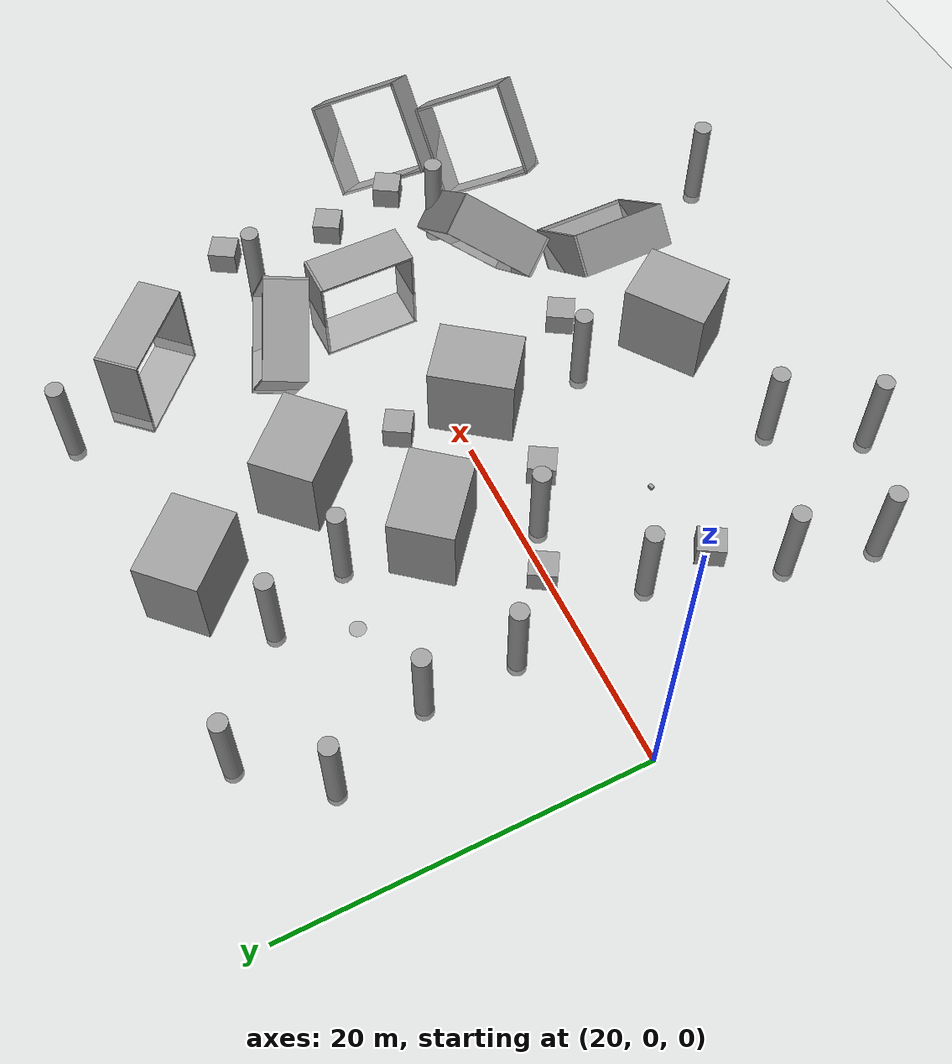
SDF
<sdf version="1.6">
 <world name="default">
  <model name="ground_plane">
   <static>1</static>
   <link name="link">
    <collision name="collision">
     <geometry><plane><normal>0 0 1</normal><size>400 400</size></plane></geometry>
     <surface><friction><ode><mu>100</mu><mu2>50</mu2></ode></friction></surface>
    </collision>
    <visual name="visual">
     <cast_shadows>0</cast_shadows>
     <geometry><plane><normal>0 0 1</normal><size>200 200</size></plane></geometry>
     <material>
      <script><uri>file://media/materials/scripts/gazebo.material</uri><name>Gazebo/Grey</name></script>
     </material>
    </visual>
    <gravity>0</gravity>
   </link>
  </model>
  <model name="unit_cylinder_0">
   <static>1</static>
   <pose>36.5123 8.86063 -7.43476 0 -0 0</pose>
   <link name="link">
    <inertial>
     <mass>1</mass>
     <inertia><ixx>0.145833</ixx><ixy>0</ixy><ixz>0</ixz><iyy>0.145833</iyy><iyz>0</iyz><izz>0.125</izz></inertia>
    </inertial>
    <collision name="collision">
     <geometry><cylinder><radius>0.5</radius><length>0.000754659</length></cylinder></geometry>
     <surface><contact><collide_without_contact>1</collide_without_contact></contact></surface>
    </collision>
    <visual name="visual">
     <geometry><cylinder><radius>0.5</radius><length>0.000754659</length></cylinder></geometry>
     <material>
      <script><name>Gazebo/Grey</name><uri>file://media/materials/scripts/gazebo.material</uri></script>
     </material>
    </visual>
    <gravity>0</gravity>
   </link>
  </model>
  <model name="unit_cylinder_0_clone_14_clone_14">
   <static>1</static>
   <pose>26.2784 -11.4682 2.40172 0 -0 0.001073</pose>
   <link name="link">
    <inertial>
     <mass>1</mass>
     <inertia><ixx>0.145833</ixx><ixy>0</ixy><ixz>0</ixz><iyy>0.145833</iyy><iyz>0</iyz><izz>0.125</izz></inertia>
    </inertial>
    <collision name="collision">
     <geometry><cylinder><radius>0.5</radius><length>6.03342</length></cylinder></geometry>
     <surface><contact><collide_without_contact>1</collide_without_contact></contact></surface>
    </collision>
    <visual name="visual">
     <geometry><cylinder><radius>0.5</radius><length>6.03342</length></cylinder></geometry>
     <material>
      <script><name>Gazebo/Grey</name><uri>file://media/materials/scripts/gazebo.material</uri></script>
     </material>
    </visual>
    <gravity>0</gravity>
   </link>
  </model>
  <model name="unit_cylinder_0_clone_14_clone_9_clone">
   <static>1</static>
   <pose>27.6139 3.55096 2.40172 0 -0 0.001073</pose>
   <link name="link">
    <inertial>
     <mass>1</mass>
     <inertia><ixx>0.145833</ixx><ixy>0</ixy><ixz>0</ixz><iyy>0.145833</iyy><iyz>0</iyz><izz>0.125</izz></inertia>
    </inertial>
    <collision name="collision">
     <geometry><cylinder><radius>0.5</radius><length>6.03342</length></cylinder></geometry>
     <surface><contact><collide_without_contact>1</collide_without_contact></contact></surface>
    </collision>
    <visual name="visual">
     <geometry><cylinder><radius>0.5</radius><length>6.03342</length></cylinder></geometry>
     <material>
      <script><name>Gazebo/Grey</name><uri>file://media/materials/scripts/gazebo.material</uri></script>
     </material>
    </visual>
    <gravity>0</gravity>
   </link>
  </model>
  <model name="unit_cylinder_0_clone_14_clone_9_clone_0">
   <static>1</static>
   <pose>28.4771 -4.34225 2.40172 0 -0 0.001073</pose>
   <link name="link">
    <inertial>
     <mass>1</mass>
     <inertia><ixx>0.145833</ixx><ixy>0</ixy><ixz>0</ixz><iyy>0.145833</iyy><iyz>0</iyz><izz>0.125</izz></inertia>
    </inertial>
    <collision name="collision">
     <geometry><cylinder><radius>0.5</radius><length>6.03342</length></cylinder></geometry>
     <surface><contact><collide_without_contact>1</collide_without_contact></contact></surface>
    </collision>
    <visual name="visual">
     <geometry><cylinder><radius>0.5</radius><length>6.03342</length></cylinder></geometry>
     <material>
      <script><name>Gazebo/Grey</name><uri>file://media/materials/scripts/gazebo.material</uri></script>
     </material>
    </visual>
    <gravity>0</gravity>
   </link>
  </model>
  <model name="unit_cylinder_0_clone_14_clone_14_clone">
   <static>1</static>
   <pose>27.4778 8.76956 2.40172 0 -0 0.001073</pose>
   <link name="link">
    <inertial>
     <mass>1</mass>
     <inertia><ixx>0.145833</ixx><ixy>0</ixy><ixz>0</ixz><iyy>0.145833</iyy><iyz>0</iyz><izz>0.125</izz></inertia>
    </inertial>
    <collision name="collision">
     <geometry><cylinder><radius>0.5</radius><length>6.03342</length></cylinder></geometry>
     <surface><contact><collide_without_contact>1</collide_without_contact></contact></surface>
    </collision>
    <visual name="visual">
     <geometry><cylinder><radius>0.5</radius><length>6.03342</length></cylinder></geometry>
     <material>
      <script><name>Gazebo/Grey</name><uri>file://media/materials/scripts/gazebo.material</uri></script>
     </material>
    </visual>
    <gravity>0</gravity>
   </link>
  </model>
  <model name="unit_box_0">
   <pose>33.6091 -7.66217 0.102875 0 -0 0.311003</pose>
   <link name="link">
    <inertial>
     <mass>1</mass>
     <inertia>
      <ixx>0.166667</ixx>
      <ixy>0</ixy>
      <ixz>0</ixz>
      <iyy>0.166667</iyy>
      <iyz>0</iyz>
      <izz>0.166667</izz>
     </inertia>
    </inertial>
    <collision name="collision">
     <geometry><box><size>0.280027 0.211756 0.205751</size></box></geometry>
    </collision>
    <visual name="visual">
     <geometry><box><size>0.280027 0.211756 0.205751</size></box></geometry>
     <material>
      <script><name>Gazebo/Grey</name><uri>file://media/materials/scripts/gazebo.material</uri></script>
     </material>
    </visual>
   </link>
  </model>
  <model name="unit_box_0_clone">
   <pose>35.8595 4.28489 2.36118 1.5708 -1e-06 0.886453</pose>
   <link name="link">
    <inertial>
     <mass>1</mass>
     <inertia>
      <ixx>0.166667</ixx>
      <ixy>0</ixy>
      <ixz>0</ixz>
      <iyy>0.166667</iyy>
      <iyz>0</iyz>
      <izz>0.166667</izz>
     </inertia>
    </inertial>
    <collision name="collision"><geometry><box><size>3.57109 4.72237 4.86028</size></box></geometry></collision>
    <visual name="visual">
     <geometry><box><size>3.57109 4.72237 4.86028</size></box></geometry>
     <material>
      <script><name>Gazebo/Grey</name><uri>file://media/materials/scripts/gazebo.material</uri></script>
     </material>
    </visual>
   </link>
  </model>
  <model name="unit_box_0_clone_0">
   <pose>42.4872 -1.52104 2.43013 1e-06 -0 -0.648959</pose>
   <link name="link">
    <inertial>
     <mass>1</mass>
     <inertia>
      <ixx>0.166667</ixx>
      <ixy>0</ixy>
      <ixz>0</ixz>
      <iyy>0.166667</iyy>
      <iyz>0</iyz>
      <izz>0.166667</izz>
     </inertia>
    </inertial>
    <collision name="collision"><geometry><box><size>3.57109 4.72237 4.86028</size></box></geometry></collision>
    <visual name="visual">
     <geometry><box><size>3.57109 4.72237 4.86028</size></box></geometry>
     <material>
      <script><name>Gazebo/Grey</name><uri>file://media/materials/scripts/gazebo.material</uri></script>
     </material>
    </visual>
   </link>
  </model>
  <model name="unit_box_0_clone_1">
   <pose>41.9571 -13.6235 2.43014 -1e-06 -0 -0.952393</pose>
   <link name="link">
    <inertial>
     <mass>1</mass>
     <inertia>
      <ixx>0.166667</ixx>
      <ixy>0</ixy>
      <ixz>0</ixz>
      <iyy>0.166667</iyy>
      <iyz>0</iyz>
      <izz>0.166667</izz>
     </inertia>
    </inertial>
    <collision name="collision"><geometry><box><size>3.57109 4.72237 4.86028</size></box></geometry></collision>
    <visual name="visual">
     <geometry><box><size>3.57109 4.72237 4.86028</size></box></geometry>
     <material>
      <script><name>Gazebo/Grey</name><uri>file://media/materials/scripts/gazebo.material</uri></script>
     </material>
    </visual>
   </link>
  </model>
  <model name="unit_box_0_clone_clone_clone">
   <pose>37.0789 -2.79874 0.73007 1.57079 -0 1.02322</pose>
   <link name="link">
    <inertial>
     <mass>1</mass>
     <inertia>
      <ixx>0.166667</ixx>
      <ixy>0</ixy>
      <ixz>0</ixz>
      <iyy>0.166667</iyy>
      <iyz>0</iyz>
      <izz>0.166667</izz>
     </inertia>
    </inertial>
    <collision name="collision"><geometry><box><size>1.57977 1.46015 1.47659</size></box></geometry></collision>
    <visual name="visual">
     <geometry><box><size>1.57977 1.46015 1.47659</size></box></geometry>
     <material>
      <script><name>Gazebo/Grey</name><uri>file://media/materials/scripts/gazebo.material</uri></script>
     </material>
    </visual>
   </link>
  </model>
  <model name="unit_box_0_clone_clone_clone_0">
   <pose>31.3347 0.144887 0.73007 1.57079 -0 1.02322</pose>
   <link name="link">
    <inertial>
     <mass>1</mass>
     <inertia>
      <ixx>0.166667</ixx>
      <ixy>0</ixy>
      <ixz>0</ixz>
      <iyy>0.166667</iyy>
      <iyz>0</iyz>
      <izz>0.166667</izz>
     </inertia>
    </inertial>
    <collision name="collision"><geometry><box><size>1.57977 1.46015 1.47659</size></box></geometry></collision>
    <visual name="visual">
     <geometry><box><size>1.57977 1.46015 1.47659</size></box></geometry>
     <material>
      <script><name>Gazebo/Grey</name><uri>file://media/materials/scripts/gazebo.material</uri></script>
     </material>
    </visual>
   </link>
  </model>
  <model name="unit_box_0_clone_clone_clone_1">
   <pose>28.7532 -8.3672 0.73007 1.57079 -0 1.02322</pose>
   <link name="link">
    <inertial>
     <mass>1</mass>
     <inertia>
      <ixx>0.166667</ixx>
      <ixy>0</ixy>
      <ixz>0</ixz>
      <iyy>0.166667</iyy>
      <iyz>0</iyz>
      <izz>0.166667</izz>
     </inertia>
    </inertial>
    <collision name="collision"><geometry><box><size>1.57977 1.46015 1.47659</size></box></geometry></collision>
    <visual name="visual">
     <geometry><box><size>1.57977 1.46015 1.47659</size></box></geometry>
     <material>
      <script><name>Gazebo/Grey</name><uri>file://media/materials/scripts/gazebo.material</uri></script>
     </material>
    </visual>
   </link>
  </model>
  <model name="unit_box_0_clone_clone_clone_2">
   <pose>42.7082 3.13136 0.73007 1.57079 -0 1.02322</pose>
   <link name="link">
    <inertial>
     <mass>1</mass>
     <inertia>
      <ixx>0.166667</ixx>
      <ixy>0</ixy>
      <ixz>0</ixz>
      <iyy>0.166667</iyy>
      <iyz>0</iyz>
      <izz>0.166667</izz>
     </inertia>
    </inertial>
    <collision name="collision"><geometry><box><size>1.57977 1.46015 1.47659</size></box></geometry></collision>
    <visual name="visual">
     <geometry><box><size>1.57977 1.46015 1.47659</size></box></geometry>
     <material>
      <script><name>Gazebo/Grey</name><uri>file://media/materials/scripts/gazebo.material</uri></script>
     </material>
    </visual>
   </link>
  </model>
  <model name="unit_box_0_clone_clone_clone_3">
   <pose>45.775 -8.54486 0.73007 1.57079 -0 1.02322</pose>
   <link name="link">
    <inertial>
     <mass>1</mass>
     <inertia>
      <ixx>0.166667</ixx>
      <ixy>0</ixy>
      <ixz>0</ixz>
      <iyy>0.166667</iyy>
      <iyz>0</iyz>
      <izz>0.166667</izz>
     </inertia>
    </inertial>
    <collision name="collision"><geometry><box><size>1.57977 1.46015 1.47659</size></box></geometry></collision>
    <visual name="visual">
     <geometry><box><size>1.57977 1.46015 1.47659</size></box></geometry>
     <material>
      <script><name>Gazebo/Grey</name><uri>file://media/materials/scripts/gazebo.material</uri></script>
     </material>
    </visual>
   </link>
  </model>
  <model name="unit_cylinder_0_clone_14_clone_9_clone_6_clone_3_clone_14">
   <static>1</static>
   <pose>25.3694 14.4037 2.40172 0 -0 0.001073</pose>
   <link name="link">
    <inertial>
     <mass>1</mass>
     <inertia><ixx>0.145833</ixx><ixy>0</ixy><ixz>0</ixz><iyy>0.145833</iyy><iyz>0</iyz><izz>0.125</izz></inertia>
    </inertial>
    <collision name="collision">
     <geometry><cylinder><radius>0.5</radius><length>6.03342</length></cylinder></geometry>
     <surface><contact><collide_without_contact>1</collide_without_contact></contact></surface>
    </collision>
    <visual name="visual">
     <geometry><cylinder><radius>0.5</radius><length>6.03342</length></cylinder></geometry>
     <material>
      <script><name>Gazebo/Grey</name><uri>file://media/materials/scripts/gazebo.material</uri></script>
     </material>
    </visual>
    <gravity>0</gravity>
   </link>
  </model>
  <model name="unit_cylinder_0_clone_14_clone_9_clone_6_clone_3_clone_18_clone_10">
   <static>1</static>
   <pose>34.4827 13.8686 2.40172 0 -0 0.001073</pose>
   <link name="link">
    <inertial>
     <mass>1</mass>
     <inertia><ixx>0.145833</ixx><ixy>0</ixy><ixz>0</ixz><iyy>0.145833</iyy><iyz>0</iyz><izz>0.125</izz></inertia>
    </inertial>
    <collision name="collision">
     <geometry><cylinder><radius>0.5</radius><length>6.03342</length></cylinder></geometry>
     <surface><contact><collide_without_contact>1</collide_without_contact></contact></surface>
    </collision>
    <visual name="visual">
     <geometry><cylinder><radius>0.5</radius><length>6.03342</length></cylinder></geometry>
     <material>
      <script><name>Gazebo/Grey</name><uri>file://media/materials/scripts/gazebo.material</uri></script>
     </material>
    </visual>
    <gravity>0</gravity>
   </link>
  </model>
  <model name="unit_cylinder_0_clone_14_clone_9_clone_6_clone_3_clone_18_clone_11">
   <static>1</static>
   <pose>33.9777 -15.1876 2.40172 0 -0 0.001073</pose>
   <link name="link">
    <inertial>
     <mass>1</mass>
     <inertia><ixx>0.145833</ixx><ixy>0</ixy><ixz>0</ixz><iyy>0.145833</iyy><iyz>0</iyz><izz>0.125</izz></inertia>
    </inertial>
    <collision name="collision">
     <geometry><cylinder><radius>0.5</radius><length>6.03342</length></cylinder></geometry>
     <surface><contact><collide_without_contact>1</collide_without_contact></contact></surface>
    </collision>
    <visual name="visual">
     <geometry><cylinder><radius>0.5</radius><length>6.03342</length></cylinder></geometry>
     <material>
      <script><name>Gazebo/Grey</name><uri>file://media/materials/scripts/gazebo.material</uri></script>
     </material>
    </visual>
    <gravity>0</gravity>
   </link>
  </model>
  <model name="unit_cylinder_0_clone_14_clone_9_clone_6_clone_3_clone_18_clone_13">
   <static>1</static>
   <pose>25.1383 -16.4177 2.40172 0 -0 0.001073</pose>
   <link name="link">
    <inertial>
     <mass>1</mass>
     <inertia><ixx>0.145833</ixx><ixy>0</ixy><ixz>0</ixz><iyy>0.145833</iyy><iyz>0</iyz><izz>0.125</izz></inertia>
    </inertial>
    <collision name="collision">
     <geometry><cylinder><radius>0.5</radius><length>6.03342</length></cylinder></geometry>
     <surface><contact><collide_without_contact>1</collide_without_contact></contact></surface>
    </collision>
    <visual name="visual">
     <geometry><cylinder><radius>0.5</radius><length>6.03342</length></cylinder></geometry>
     <material>
      <script><name>Gazebo/Grey</name><uri>file://media/materials/scripts/gazebo.material</uri></script>
     </material>
    </visual>
    <gravity>0</gravity>
   </link>
  </model>
  <model name="unit_cylinder_0_clone_14_clone_9_clone_6_clone_3_clone_18_clone_15">
   <static>1</static>
   <pose>28.6256 18.4596 2.40172 0 -0 0.001073</pose>
   <link name="link">
    <inertial>
     <mass>1</mass>
     <inertia><ixx>0.145833</ixx><ixy>0</ixy><ixz>0</ixz><iyy>0.145833</iyy><iyz>0</iyz><izz>0.125</izz></inertia>
    </inertial>
    <collision name="collision">
     <geometry><cylinder><radius>0.5</radius><length>6.03342</length></cylinder></geometry>
     <surface><contact><collide_without_contact>1</collide_without_contact></contact></surface>
    </collision>
    <visual name="visual">
     <geometry><cylinder><radius>0.5</radius><length>6.03342</length></cylinder></geometry>
     <material>
      <script><name>Gazebo/Grey</name><uri>file://media/materials/scripts/gazebo.material</uri></script>
     </material>
    </visual>
    <gravity>0</gravity>
   </link>
  </model>
  <model name="unit_cylinder_0_clone_14_clone_9_clone_6_clone_3_clone_18_clone_20">
   <static>1</static>
   <pose>41.966 -7.74385 2.40172 0 -0 0.001073</pose>
   <link name="link">
    <inertial>
     <mass>1</mass>
     <inertia><ixx>0.145833</ixx><ixy>0</ixy><ixz>0</ixz><iyy>0.145833</iyy><iyz>0</iyz><izz>0.125</izz></inertia>
    </inertial>
    <collision name="collision">
     <geometry><cylinder><radius>0.5</radius><length>6.03342</length></cylinder></geometry>
     <surface><contact><collide_without_contact>1</collide_without_contact></contact></surface>
    </collision>
    <visual name="visual">
     <geometry><cylinder><radius>0.5</radius><length>6.03342</length></cylinder></geometry>
     <material>
      <script><name>Gazebo/Grey</name><uri>file://media/materials/scripts/gazebo.material</uri></script>
     </material>
    </visual>
    <gravity>0</gravity>
   </link>
  </model>
  <model name="unit_cylinder_0_clone_14_clone_9_clone_6_clone_3_clone_18_clone_21">
   <static>1</static>
   <pose>36.3621 9.27984 2.40172 0 -0 0.001073</pose>
   <link name="link">
    <inertial>
     <mass>1</mass>
     <inertia><ixx>0.145833</ixx><ixy>0</ixy><ixz>0</ixz><iyy>0.145833</iyy><iyz>0</iyz><izz>0.125</izz></inertia>
    </inertial>
    <collision name="collision">
     <geometry><cylinder><radius>0.5</radius><length>6.03342</length></cylinder></geometry>
     <surface><contact><collide_without_contact>1</collide_without_contact></contact></surface>
    </collision>
    <visual name="visual">
     <geometry><cylinder><radius>0.5</radius><length>6.03342</length></cylinder></geometry>
     <material>
      <script><name>Gazebo/Grey</name><uri>file://media/materials/scripts/gazebo.material</uri></script>
     </material>
    </visual>
    <gravity>0</gravity>
   </link>
  </model>
  <model name="unit_cylinder_0_clone_14_clone_9_clone_6_clone_3_clone_18_clone_22">
   <static>1</static>
   <pose>34 -1 2.40172 0 -0 0.001073</pose>
   <link name="link">
    <inertial>
     <mass>1</mass>
     <inertia><ixx>0.145833</ixx><ixy>0</ixy><ixz>0</ixz><iyy>0.145833</iyy><iyz>0</iyz><izz>0.125</izz></inertia>
    </inertial>
    <collision name="collision">
     <geometry><cylinder><radius>0.5</radius><length>6.03342</length></cylinder></geometry>
     <surface><contact><collide_without_contact>1</collide_without_contact></contact></surface>
    </collision>
    <visual name="visual">
     <geometry><cylinder><radius>0.5</radius><length>6.03342</length></cylinder></geometry>
     <material>
      <script><name>Gazebo/Grey</name><uri>file://media/materials/scripts/gazebo.material</uri></script>
     </material>
    </visual>
    <gravity>0</gravity>
   </link>
  </model>
  <model name="unit_cylinder_0_clone_14_clone_9_clone_6_clone_3_clone_18_clone_26">
   <static>1</static>
   <pose>31.1289 -19.8195 2.40172 0 -0 0.001073</pose>
   <link name="link">
    <inertial>
     <mass>1</mass>
     <inertia><ixx>0.145833</ixx><ixy>0</ixy><ixz>0</ixz><iyy>0.145833</iyy><iyz>0</iyz><izz>0.125</izz></inertia>
    </inertial>
    <collision name="collision">
     <geometry><cylinder><radius>0.5</radius><length>6.03342</length></cylinder></geometry>
     <surface><contact><collide_without_contact>1</collide_without_contact></contact></surface>
    </collision>
    <visual name="visual">
     <geometry><cylinder><radius>0.5</radius><length>6.03342</length></cylinder></geometry>
     <material>
      <script><name>Gazebo/Grey</name><uri>file://media/materials/scripts/gazebo.material</uri></script>
     </material>
    </visual>
    <gravity>0</gravity>
   </link>
  </model>
  <model name="unit_cylinder_0_clone_14_clone_9_clone_6_clone_3_clone_18_clone_15_clone">
   <static>1</static>
   <pose>49.8798 19.4265 2.40172 0 -0 0.001073</pose>
   <link name="link">
    <inertial>
     <mass>1</mass>
     <inertia><ixx>0.145833</ixx><ixy>0</ixy><ixz>0</ixz><iyy>0.145833</iyy><iyz>0</iyz><izz>0.125</izz></inertia>
    </inertial>
    <collision name="collision">
     <geometry><cylinder><radius>0.5</radius><length>6.03342</length></cylinder></geometry>
     <surface><contact><collide_without_contact>1</collide_without_contact></contact></surface>
    </collision>
    <visual name="visual">
     <geometry><cylinder><radius>0.5</radius><length>6.03342</length></cylinder></geometry>
     <material>
      <script><name>Gazebo/Grey</name><uri>file://media/materials/scripts/gazebo.material</uri></script>
     </material>
    </visual>
    <gravity>0</gravity>
   </link>
  </model>
  <model name="unit_cylinder_0_clone_14_clone_9_clone_6_clone_3_clone_18_clone_15_clone_0">
   <static>1</static>
   <pose>55.4288 6.31568 2.40172 0 -0 0.001073</pose>
   <link name="link">
    <inertial>
     <mass>1</mass>
     <inertia><ixx>0.145833</ixx><ixy>0</ixy><ixz>0</ixz><iyy>0.145833</iyy><iyz>0</iyz><izz>0.125</izz></inertia>
    </inertial>
    <collision name="collision">
     <geometry><cylinder><radius>0.5</radius><length>6.03342</length></cylinder></geometry>
     <surface><contact><collide_without_contact>1</collide_without_contact></contact></surface>
    </collision>
    <visual name="visual">
     <geometry><cylinder><radius>0.5</radius><length>6.03342</length></cylinder></geometry>
     <material>
      <script><name>Gazebo/Grey</name><uri>file://media/materials/scripts/gazebo.material</uri></script>
     </material>
    </visual>
    <gravity>0</gravity>
   </link>
  </model>
  <model name="unit_cylinder_0_clone_14_clone_9_clone_6_clone_3_clone_18_clone_15_clone_1">
   <static>1</static>
   <pose>55.6816 -5.18809 2.40172 0 -0 0.001073</pose>
   <link name="link">
    <inertial>
     <mass>1</mass>
     <inertia><ixx>0.145833</ixx><ixy>0</ixy><ixz>0</ixz><iyy>0.145833</iyy><iyz>0</iyz><izz>0.125</izz></inertia>
    </inertial>
    <collision name="collision">
     <geometry><cylinder><radius>0.5</radius><length>6.03342</length></cylinder></geometry>
     <surface><contact><collide_without_contact>1</collide_without_contact></contact></surface>
    </collision>
    <visual name="visual">
     <geometry><cylinder><radius>0.5</radius><length>6.03342</length></cylinder></geometry>
     <material>
      <script><name>Gazebo/Grey</name><uri>file://media/materials/scripts/gazebo.material</uri></script>
     </material>
    </visual>
    <gravity>0</gravity>
   </link>
  </model>
  <model name="unit_cylinder_0_clone_14_clone_9_clone_6_clone_3_clone_18_clone_15_clone_2">
   <static>1</static>
   <pose>51.3442 -20.8144 2.40172 0 -0 0.001073</pose>
   <link name="link">
    <inertial>
     <mass>1</mass>
     <inertia><ixx>0.145833</ixx><ixy>0</ixy><ixz>0</ixz><iyy>0.145833</iyy><iyz>0</iyz><izz>0.125</izz></inertia>
    </inertial>
    <collision name="collision">
     <geometry><cylinder><radius>0.5</radius><length>6.03342</length></cylinder></geometry>
     <surface><contact><collide_without_contact>1</collide_without_contact></contact></surface>
    </collision>
    <visual name="visual">
     <geometry><cylinder><radius>0.5</radius><length>6.03342</length></cylinder></geometry>
     <material>
      <script><name>Gazebo/Grey</name><uri>file://media/materials/scripts/gazebo.material</uri></script>
     </material>
    </visual>
    <gravity>0</gravity>
   </link>
  </model>
  <model name="vRoom_clone_3_clone">
   <pose>48.962 -13.5581 3e-06 1e-06 0.720917 -1e-06</pose>
   <link name="Wall_0">
    <collision name="Wall_0_Collision">
     <geometry><box><size>5.75 0.15 2.5</size></box></geometry>
     <pose>0 0 1.25 0 -0 0</pose>
    </collision>
    <visual name="Wall_0_Visual">
     <pose>0 0 1.25 0 -0 0</pose>
     <geometry><box><size>5.75 0.15 2.5</size></box></geometry>
     <material>
      <script><uri>file://media/materials/scripts/gazebo.material</uri><name>Gazebo/Grey</name></script>
      <ambient>1 1 1 1</ambient>
     </material>
    </visual>
    <pose>-2.8 -0 0 0 0 -1.5708</pose>
    <velocity_decay><linear>0</linear><angular>0</angular></velocity_decay>
   </link>
   <link name="Wall_1">
    <collision name="Wall_1_Collision">
     <geometry><box><size>5.75 0.15 2.5</size></box></geometry>
     <pose>0 0 1.25 0 -0 0</pose>
    </collision>
    <visual name="Wall_1_Visual">
     <pose>0 0 1.25 0 -0 0</pose>
     <geometry><box><size>5.75 0.15 2.5</size></box></geometry>
     <material>
      <script><uri>file://media/materials/scripts/gazebo.material</uri><name>Gazebo/Grey</name></script>
      <ambient>1 1 1 1</ambient>
     </material>
    </visual>
    <pose>0 -2.8 0 0 -0 0</pose>
    <velocity_decay><linear>0</linear><angular>0</angular></velocity_decay>
   </link>
   <link name="Wall_2">
    <collision name="Wall_2_Collision">
     <geometry><box><size>5.75 0.15 2.5</size></box></geometry>
     <pose>0 0 1.25 0 -0 0</pose>
    </collision>
    <visual name="Wall_2_Visual">
     <pose>0 0 1.25 0 -0 0</pose>
     <geometry><box><size>5.75 0.15 2.5</size></box></geometry>
     <material>
      <script><uri>file://media/materials/scripts/gazebo.material</uri><name>Gazebo/Grey</name></script>
      <ambient>1 1 1 1</ambient>
     </material>
    </visual>
    <pose>2.8 -0 0 0 -0 1.5708</pose>
    <velocity_decay><linear>0</linear><angular>0</angular></velocity_decay>
   </link>
   <link name="Wall_3">
    <collision name="Wall_3_Collision">
     <geometry><box><size>5.75 0.15 2.5</size></box></geometry>
     <pose>0 0 1.25 0 -0 0</pose>
    </collision>
    <visual name="Wall_3_Visual">
     <pose>0 0 1.25 0 -0 0</pose>
     <geometry><box><size>5.75 0.15 2.5</size></box></geometry>
     <material>
      <script><uri>file://media/materials/scripts/gazebo.material</uri><name>Gazebo/Grey</name></script>
      <ambient>1 1 1 1</ambient>
     </material>
    </visual>
    <pose>0 2.8 0 0 -0 3.14159</pose>
    <velocity_decay><linear>0</linear><angular>0</angular></velocity_decay>
   </link>
   <static>1</static>
  </model>
  <model name="vRoom_clone_3_clone_clone">
   <pose>51.5238 0.924699 0.272864 -3.14158 1.55054 -3.14158</pose>
   <link name="Wall_0">
    <collision name="Wall_0_Collision">
     <geometry><box><size>5.75 0.15 2.5</size></box></geometry>
     <pose>0 0 1.25 0 -0 0</pose>
    </collision>
    <visual name="Wall_0_Visual">
     <pose>0 0 1.25 0 -0 0</pose>
     <geometry><box><size>5.75 0.15 2.5</size></box></geometry>
     <material>
      <script><uri>file://media/materials/scripts/gazebo.material</uri><name>Gazebo/Grey</name></script>
      <ambient>1 1 1 1</ambient>
     </material>
    </visual>
    <pose>-2.8 -0 0 0 0 -1.5708</pose>
    <velocity_decay><linear>0</linear><angular>0</angular></velocity_decay>
   </link>
   <link name="Wall_1">
    <collision name="Wall_1_Collision">
     <geometry><box><size>5.75 0.15 2.5</size></box></geometry>
     <pose>0 0 1.25 0 -0 0</pose>
    </collision>
    <visual name="Wall_1_Visual">
     <pose>0 0 1.25 0 -0 0</pose>
     <geometry><box><size>5.75 0.15 2.5</size></box></geometry>
     <material>
      <script><uri>file://media/materials/scripts/gazebo.material</uri><name>Gazebo/Grey</name></script>
      <ambient>1 1 1 1</ambient>
     </material>
    </visual>
    <pose>0 -2.8 0 0 -0 0</pose>
    <velocity_decay><linear>0</linear><angular>0</angular></velocity_decay>
   </link>
   <link name="Wall_2">
    <collision name="Wall_2_Collision">
     <geometry><box><size>5.75 0.15 2.5</size></box></geometry>
     <pose>0 0 1.25 0 -0 0</pose>
    </collision>
    <visual name="Wall_2_Visual">
     <pose>0 0 1.25 0 -0 0</pose>
     <geometry><box><size>5.75 0.15 2.5</size></box></geometry>
     <material>
      <script><uri>file://media/materials/scripts/gazebo.material</uri><name>Gazebo/Grey</name></script>
      <ambient>1 1 1 1</ambient>
     </material>
    </visual>
    <pose>2.8 -0 0 0 -0 1.5708</pose>
    <velocity_decay><linear>0</linear><angular>0</angular></velocity_decay>
   </link>
   <link name="Wall_3">
    <collision name="Wall_3_Collision">
     <geometry><box><size>5.75 0.15 2.5</size></box></geometry>
     <pose>0 0 1.25 0 -0 0</pose>
    </collision>
    <visual name="Wall_3_Visual">
     <pose>0 0 1.25 0 -0 0</pose>
     <geometry><box><size>5.75 0.15 2.5</size></box></geometry>
     <material>
      <script><uri>file://media/materials/scripts/gazebo.material</uri><name>Gazebo/Grey</name></script>
      <ambient>1 1 1 1</ambient>
     </material>
    </visual>
    <pose>0 2.8 0 0 -0 3.14159</pose>
    <velocity_decay><linear>0</linear><angular>0</angular></velocity_decay>
   </link>
   <static>1</static>
  </model>
  <model name="vRoom_clone_3_clone_clone_clone">
   <pose>51.7787 13.1089 1.74792 2.33551 1.55054 3.1415</pose>
   <link name="Wall_0">
    <collision name="Wall_0_Collision">
     <geometry><box><size>5.75 0.15 2.5</size></box></geometry>
     <pose>0 0 1.25 0 -0 0</pose>
    </collision>
    <visual name="Wall_0_Visual">
     <pose>0 0 1.25 0 -0 0</pose>
     <geometry><box><size>5.75 0.15 2.5</size></box></geometry>
     <material>
      <script><uri>file://media/materials/scripts/gazebo.material</uri><name>Gazebo/Grey</name></script>
      <ambient>1 1 1 1</ambient>
     </material>
    </visual>
    <pose>-2.8 -0 0 0 0 -1.5708</pose>
    <velocity_decay><linear>0</linear><angular>0</angular></velocity_decay>
   </link>
   <link name="Wall_1">
    <collision name="Wall_1_Collision">
     <geometry><box><size>5.75 0.15 2.5</size></box></geometry>
     <pose>0 0 1.25 0 -0 0</pose>
    </collision>
    <visual name="Wall_1_Visual">
     <pose>0 0 1.25 0 -0 0</pose>
     <geometry><box><size>5.75 0.15 2.5</size></box></geometry>
     <material>
      <script><uri>file://media/materials/scripts/gazebo.material</uri><name>Gazebo/Grey</name></script>
      <ambient>1 1 1 1</ambient>
     </material>
    </visual>
    <pose>0 -2.8 0 0 -0 0</pose>
    <velocity_decay><linear>0</linear><angular>0</angular></velocity_decay>
   </link>
   <link name="Wall_2">
    <collision name="Wall_2_Collision">
     <geometry><box><size>5.75 0.15 2.5</size></box></geometry>
     <pose>0 0 1.25 0 -0 0</pose>
    </collision>
    <visual name="Wall_2_Visual">
     <pose>0 0 1.25 0 -0 0</pose>
     <geometry><box><size>5.75 0.15 2.5</size></box></geometry>
     <material>
      <script><uri>file://media/materials/scripts/gazebo.material</uri><name>Gazebo/Grey</name></script>
      <ambient>1 1 1 1</ambient>
     </material>
    </visual>
    <pose>2.8 -0 0 0 -0 1.5708</pose>
    <velocity_decay><linear>0</linear><angular>0</angular></velocity_decay>
   </link>
   <link name="Wall_3">
    <collision name="Wall_3_Collision">
     <geometry><box><size>5.75 0.15 2.5</size></box></geometry>
     <pose>0 0 1.25 0 -0 0</pose>
    </collision>
    <visual name="Wall_3_Visual">
     <pose>0 0 1.25 0 -0 0</pose>
     <geometry><box><size>5.75 0.15 2.5</size></box></geometry>
     <material>
      <script><uri>file://media/materials/scripts/gazebo.material</uri><name>Gazebo/Grey</name></script>
      <ambient>1 1 1 1</ambient>
     </material>
    </visual>
    <pose>0 2.8 0 0 -0 3.14159</pose>
    <velocity_decay><linear>0</linear><angular>0</angular></velocity_decay>
   </link>
   <static>1</static>
  </model>
  <model name="vRoom_clone_3_clone_clone_2">
   <pose>59.7314 -9.6587 1.6095 -2.15025 -0.457557 -2.10857</pose>
   <link name="Wall_0">
    <collision name="Wall_0_Collision">
     <geometry><box><size>5.75 0.15 2.5</size></box></geometry>
     <pose>0 0 1.25 0 -0 0</pose>
    </collision>
    <visual name="Wall_0_Visual">
     <pose>0 0 1.25 0 -0 0</pose>
     <geometry><box><size>5.75 0.15 2.5</size></box></geometry>
     <material>
      <script><uri>file://media/materials/scripts/gazebo.material</uri><name>Gazebo/Grey</name></script>
      <ambient>1 1 1 1</ambient>
     </material>
    </visual>
    <pose>-2.8 -0 0 0 0 -1.5708</pose>
    <velocity_decay><linear>0</linear><angular>0</angular></velocity_decay>
   </link>
   <link name="Wall_1">
    <collision name="Wall_1_Collision">
     <geometry><box><size>5.75 0.15 2.5</size></box></geometry>
     <pose>0 0 1.25 0 -0 0</pose>
    </collision>
    <visual name="Wall_1_Visual">
     <pose>0 0 1.25 0 -0 0</pose>
     <geometry><box><size>5.75 0.15 2.5</size></box></geometry>
     <material>
      <script><uri>file://media/materials/scripts/gazebo.material</uri><name>Gazebo/Grey</name></script>
      <ambient>1 1 1 1</ambient>
     </material>
    </visual>
    <pose>0 -2.8 0 0 -0 0</pose>
    <velocity_decay><linear>0</linear><angular>0</angular></velocity_decay>
   </link>
   <link name="Wall_2">
    <collision name="Wall_2_Collision">
     <geometry><box><size>5.75 0.15 2.5</size></box></geometry>
     <pose>0 0 1.25 0 -0 0</pose>
    </collision>
    <visual name="Wall_2_Visual">
     <pose>0 0 1.25 0 -0 0</pose>
     <geometry><box><size>5.75 0.15 2.5</size></box></geometry>
     <material>
      <script><uri>file://media/materials/scripts/gazebo.material</uri><name>Gazebo/Grey</name></script>
      <ambient>1 1 1 1</ambient>
     </material>
    </visual>
    <pose>2.8 -0 0 0 -0 1.5708</pose>
    <velocity_decay><linear>0</linear><angular>0</angular></velocity_decay>
   </link>
   <link name="Wall_3">
    <collision name="Wall_3_Collision">
     <geometry><box><size>5.75 0.15 2.5</size></box></geometry>
     <pose>0 0 1.25 0 -0 0</pose>
    </collision>
    <visual name="Wall_3_Visual">
     <pose>0 0 1.25 0 -0 0</pose>
     <geometry><box><size>5.75 0.15 2.5</size></box></geometry>
     <material>
      <script><uri>file://media/materials/scripts/gazebo.material</uri><name>Gazebo/Grey</name></script>
      <ambient>1 1 1 1</ambient>
     </material>
    </visual>
    <pose>0 2.8 0 0 -0 3.14159</pose>
    <velocity_decay><linear>0</linear><angular>0</angular></velocity_decay>
   </link>
   <static>1</static>
  </model>
  <model name="vRoom_clone_3_clone_clone_2_clone">
   <pose>62.6974 -3.92781 1.6095 -2.15025 -0.457556 -2.10857</pose>
   <link name="Wall_0">
    <collision name="Wall_0_Collision">
     <geometry><box><size>5.75 0.15 2.5</size></box></geometry>
     <pose>0 0 1.25 0 -0 0</pose>
    </collision>
    <visual name="Wall_0_Visual">
     <pose>0 0 1.25 0 -0 0</pose>
     <geometry><box><size>5.75 0.15 2.5</size></box></geometry>
     <material>
      <script><uri>file://media/materials/scripts/gazebo.material</uri><name>Gazebo/Grey</name></script>
      <ambient>1 1 1 1</ambient>
     </material>
    </visual>
    <pose>-2.8 -0 0 0 0 -1.5708</pose>
    <velocity_decay><linear>0</linear><angular>0</angular></velocity_decay>
   </link>
   <link name="Wall_1">
    <collision name="Wall_1_Collision">
     <geometry><box><size>5.75 0.15 2.5</size></box></geometry>
     <pose>0 0 1.25 0 -0 0</pose>
    </collision>
    <visual name="Wall_1_Visual">
     <pose>0 0 1.25 0 -0 0</pose>
     <geometry><box><size>5.75 0.15 2.5</size></box></geometry>
     <material>
      <script><uri>file://media/materials/scripts/gazebo.material</uri><name>Gazebo/Grey</name></script>
      <ambient>1 1 1 1</ambient>
     </material>
    </visual>
    <pose>0 -2.8 0 0 -0 0</pose>
    <velocity_decay><linear>0</linear><angular>0</angular></velocity_decay>
   </link>
   <link name="Wall_2">
    <collision name="Wall_2_Collision">
     <geometry><box><size>5.75 0.15 2.5</size></box></geometry>
     <pose>0 0 1.25 0 -0 0</pose>
    </collision>
    <visual name="Wall_2_Visual">
     <pose>0 0 1.25 0 -0 0</pose>
     <geometry><box><size>5.75 0.15 2.5</size></box></geometry>
     <material>
      <script><uri>file://media/materials/scripts/gazebo.material</uri><name>Gazebo/Grey</name></script>
      <ambient>1 1 1 1</ambient>
     </material>
    </visual>
    <pose>2.8 -0 0 0 -0 1.5708</pose>
    <velocity_decay><linear>0</linear><angular>0</angular></velocity_decay>
   </link>
   <link name="Wall_3">
    <collision name="Wall_3_Collision">
     <geometry><box><size>5.75 0.15 2.5</size></box></geometry>
     <pose>0 0 1.25 0 -0 0</pose>
    </collision>
    <visual name="Wall_3_Visual">
     <pose>0 0 1.25 0 -0 0</pose>
     <geometry><box><size>5.75 0.15 2.5</size></box></geometry>
     <material>
      <script><uri>file://media/materials/scripts/gazebo.material</uri><name>Gazebo/Grey</name></script>
      <ambient>1 1 1 1</ambient>
     </material>
    </visual>
    <pose>0 2.8 0 0 -0 3.14159</pose>
    <velocity_decay><linear>0</linear><angular>0</angular></velocity_decay>
   </link>
   <static>1</static>
  </model>
  <model name="vRoom_clone_3_clone_clone_8_clone">
   <pose>52.9393 -7.66951 2.75346 -2.34607 0.720921 4e-06</pose>
   <link name="Wall_0">
    <collision name="Wall_0_Collision">
     <geometry><box><size>5.75 0.15 2.5</size></box></geometry>
     <pose>0 0 1.25 0 -0 0</pose>
    </collision>
    <visual name="Wall_0_Visual">
     <pose>0 0 1.25 0 -0 0</pose>
     <geometry><box><size>5.75 0.15 2.5</size></box></geometry>
     <material>
      <script><uri>file://media/materials/scripts/gazebo.material</uri><name>Gazebo/Grey</name></script>
      <ambient>1 1 1 1</ambient>
     </material>
    </visual>
    <pose>-2.8 -0 0 0 0 -1.5708</pose>
    <velocity_decay><linear>0</linear><angular>0</angular></velocity_decay>
   </link>
   <link name="Wall_1">
    <collision name="Wall_1_Collision">
     <geometry><box><size>5.75 0.15 2.5</size></box></geometry>
     <pose>0 0 1.25 0 -0 0</pose>
    </collision>
    <visual name="Wall_1_Visual">
     <pose>0 0 1.25 0 -0 0</pose>
     <geometry><box><size>5.75 0.15 2.5</size></box></geometry>
     <material>
      <script><uri>file://media/materials/scripts/gazebo.material</uri><name>Gazebo/Grey</name></script>
      <ambient>1 1 1 1</ambient>
     </material>
    </visual>
    <pose>0 -2.8 0 0 -0 0</pose>
    <velocity_decay><linear>0</linear><angular>0</angular></velocity_decay>
   </link>
   <link name="Wall_2">
    <collision name="Wall_2_Collision">
     <geometry><box><size>5.75 0.15 2.5</size></box></geometry>
     <pose>0 0 1.25 0 -0 0</pose>
    </collision>
    <visual name="Wall_2_Visual">
     <pose>0 0 1.25 0 -0 0</pose>
     <geometry><box><size>5.75 0.15 2.5</size></box></geometry>
     <material>
      <script><uri>file://media/materials/scripts/gazebo.material</uri><name>Gazebo/Grey</name></script>
      <ambient>1 1 1 1</ambient>
     </material>
    </visual>
    <pose>2.8 -0 0 0 -0 1.5708</pose>
    <velocity_decay><linear>0</linear><angular>0</angular></velocity_decay>
   </link>
   <link name="Wall_3">
    <collision name="Wall_3_Collision">
     <geometry><box><size>5.75 0.15 2.5</size></box></geometry>
     <pose>0 0 1.25 0 -0 0</pose>
    </collision>
    <visual name="Wall_3_Visual">
     <pose>0 0 1.25 0 -0 0</pose>
     <geometry><box><size>5.75 0.15 2.5</size></box></geometry>
     <material>
      <script><uri>file://media/materials/scripts/gazebo.material</uri><name>Gazebo/Grey</name></script>
      <ambient>1 1 1 1</ambient>
     </material>
    </visual>
    <pose>0 2.8 0 0 -0 3.14159</pose>
    <velocity_decay><linear>0</linear><angular>0</angular></velocity_decay>
   </link>
   <static>1</static>
  </model>
  <model name="vRoom_clone_3_clone_clone_1_clone">
   <pose>50.7169 8.05877 2.50816 1.95875 1.01829 5e-06</pose>
   <link name="Wall_0">
    <collision name="Wall_0_Collision">
     <geometry><box><size>5.75 0.15 2.5</size></box></geometry>
     <pose>0 0 1.25 0 -0 0</pose>
    </collision>
    <visual name="Wall_0_Visual">
     <pose>0 0 1.25 0 -0 0</pose>
     <geometry><box><size>5.75 0.15 2.5</size></box></geometry>
     <material>
      <script><uri>file://media/materials/scripts/gazebo.material</uri><name>Gazebo/Grey</name></script>
      <ambient>1 1 1 1</ambient>
     </material>
    </visual>
    <pose>-2.8 -0 0 0 0 -1.5708</pose>
    <velocity_decay><linear>0</linear><angular>0</angular></velocity_decay>
   </link>
   <link name="Wall_1">
    <collision name="Wall_1_Collision">
     <geometry><box><size>5.75 0.15 2.5</size></box></geometry>
     <pose>0 0 1.25 0 -0 0</pose>
    </collision>
    <visual name="Wall_1_Visual">
     <pose>0 0 1.25 0 -0 0</pose>
     <geometry><box><size>5.75 0.15 2.5</size></box></geometry>
     <material>
      <script><uri>file://media/materials/scripts/gazebo.material</uri><name>Gazebo/Grey</name></script>
      <ambient>1 1 1 1</ambient>
     </material>
    </visual>
    <pose>0 -2.8 0 0 -0 0</pose>
    <velocity_decay><linear>0</linear><angular>0</angular></velocity_decay>
   </link>
   <link name="Wall_2">
    <collision name="Wall_2_Collision">
     <geometry><box><size>5.75 0.15 2.5</size></box></geometry>
     <pose>0 0 1.25 0 -0 0</pose>
    </collision>
    <visual name="Wall_2_Visual">
     <pose>0 0 1.25 0 -0 0</pose>
     <geometry><box><size>5.75 0.15 2.5</size></box></geometry>
     <material>
      <script><uri>file://media/materials/scripts/gazebo.material</uri><name>Gazebo/Grey</name></script>
      <ambient>1 1 1 1</ambient>
     </material>
    </visual>
    <pose>2.8 -0 0 0 -0 1.5708</pose>
    <velocity_decay><linear>0</linear><angular>0</angular></velocity_decay>
   </link>
   <link name="Wall_3">
    <collision name="Wall_3_Collision">
     <geometry><box><size>5.75 0.15 2.5</size></box></geometry>
     <pose>0 0 1.25 0 -0 0</pose>
    </collision>
    <visual name="Wall_3_Visual">
     <pose>0 0 1.25 0 -0 0</pose>
     <geometry><box><size>5.75 0.15 2.5</size></box></geometry>
     <material>
      <script><uri>file://media/materials/scripts/gazebo.material</uri><name>Gazebo/Grey</name></script>
      <ambient>1 1 1 1</ambient>
     </material>
    </visual>
    <pose>0 2.8 0 0 -0 3.14159</pose>
    <velocity_decay><linear>0</linear><angular>0</angular></velocity_decay>
   </link>
   <static>1</static>
  </model>
  <model name="unit_box_0_clone_clone_clone_2_clone">
   <pose>57.9843 0.782231 0.73007 1.57079 -0 1.02322</pose>
   <link name="link">
    <inertial>
     <mass>1</mass>
     <inertia>
      <ixx>0.166667</ixx>
      <ixy>0</ixy>
      <ixz>0</ixz>
      <iyy>0.166667</iyy>
      <iyz>0</iyz>
      <izz>0.166667</izz>
     </inertia>
    </inertial>
    <collision name="collision"><geometry><box><size>1.57977 1.46015 1.47659</size></box></geometry></collision>
    <visual name="visual">
     <geometry><box><size>1.57977 1.46015 1.47659</size></box></geometry>
     <material>
      <script><name>Gazebo/Grey</name><uri>file://media/materials/scripts/gazebo.material</uri></script>
     </material>
    </visual>
   </link>
  </model>
  <model name="unit_box_0_clone_clone_clone_2_clone_1">
   <pose>59.1087 -3.63096 0.73007 1.57079 -0 1.02322</pose>
   <link name="link">
    <inertial>
     <mass>1</mass>
     <inertia>
      <ixx>0.166667</ixx>
      <ixy>0</ixy>
      <ixz>0</ixz>
      <iyy>0.166667</iyy>
      <iyz>0</iyz>
      <izz>0.166667</izz>
     </inertia>
    </inertial>
    <collision name="collision"><geometry><box><size>1.57977 1.46015 1.47659</size></box></geometry></collision>
    <visual name="visual">
     <geometry><box><size>1.57977 1.46015 1.47659</size></box></geometry>
     <material>
      <script><name>Gazebo/Grey</name><uri>file://media/materials/scripts/gazebo.material</uri></script>
     </material>
    </visual>
   </link>
  </model>
  <model name="unit_box_0_clone_clone_clone_2_clone_2">
   <pose>58.6286 7.18842 0.73007 1.57079 -0 1.02322</pose>
   <link name="link">
    <inertial>
     <mass>1</mass>
     <inertia>
      <ixx>0.166667</ixx>
      <ixy>0</ixy>
      <ixz>0</ixz>
      <iyy>0.166667</iyy>
      <iyz>0</iyz>
      <izz>0.166667</izz>
     </inertia>
    </inertial>
    <collision name="collision"><geometry><box><size>1.57977 1.46015 1.47659</size></box></geometry></collision>
    <visual name="visual">
     <geometry><box><size>1.57977 1.46015 1.47659</size></box></geometry>
     <material>
      <script><name>Gazebo/Grey</name><uri>file://media/materials/scripts/gazebo.material</uri></script>
     </material>
    </visual>
   </link>
  </model>
  <model name="unit_box_0_clone_2_clone">
   <pose>38.6305 16.4656 2.43014 0 -0 0.77851</pose>
   <link name="link">
    <inertial>
     <mass>1</mass>
     <inertia>
      <ixx>0.166667</ixx>
      <ixy>0</ixy>
      <ixz>0</ixz>
      <iyy>0.166667</iyy>
      <iyz>0</iyz>
      <izz>0.166667</izz>
     </inertia>
    </inertial>
    <collision name="collision"><geometry><box><size>3.57109 4.72237 4.86028</size></box></geometry></collision>
    <visual name="visual">
     <geometry><box><size>3.57109 4.72237 4.86028</size></box></geometry>
     <material>
      <script><name>Gazebo/Grey</name><uri>file://media/materials/scripts/gazebo.material</uri></script>
     </material>
    </visual>
   </link>
  </model>
  <model name="unit_box_0_clone_2_clone_clone">
   <pose>41.9194 9.04963 2.43013 1e-06 -0 0.778485</pose>
   <link name="link">
    <inertial>
     <mass>1</mass>
     <inertia>
      <ixx>0.166667</ixx>
      <ixy>0</ixy>
      <ixz>0</ixz>
      <iyy>0.166667</iyy>
      <iyz>0</iyz>
      <izz>0.166667</izz>
     </inertia>
    </inertial>
    <collision name="collision"><geometry><box><size>3.57109 4.72237 4.86028</size></box></geometry></collision>
    <visual name="visual">
     <geometry><box><size>3.57109 4.72237 4.86028</size></box></geometry>
     <material>
      <script><name>Gazebo/Grey</name><uri>file://media/materials/scripts/gazebo.material</uri></script>
     </material>
    </visual>
   </link>
  </model>
 </world>
</sdf>
